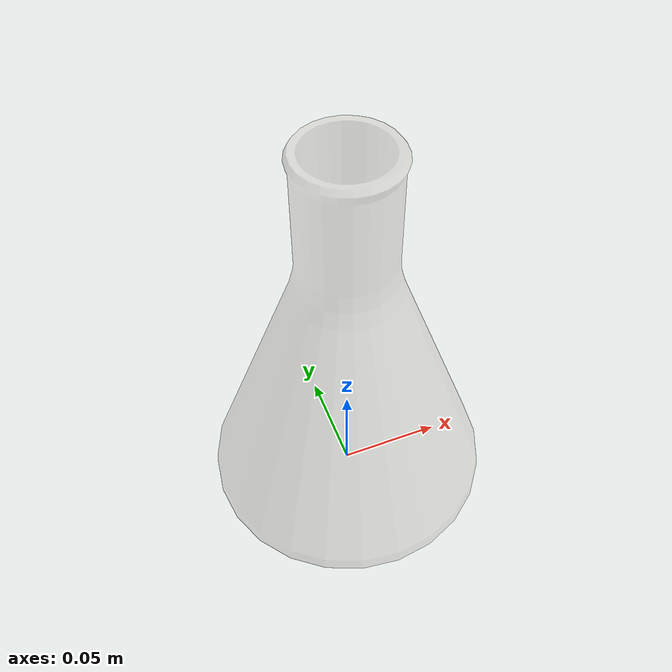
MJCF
<?xml version="1.0" ?>
<mujoco model="flask">
  <asset>
    <texture type="2d" name="lab_erlenmeyer_a" file="lab_erlenmeyer_a.png"/>
    <material name="lab_erlenmeyer_a" texture="lab_erlenmeyer_a" specular="0.4000000000000001" shininess="0.001" rgba="1 1 1 0.3"/>
    <mesh file="flask.obj" scale="0.013126563322826317 0.013126563322826317 0.013126563322826317"/>
      <material name="CaSO4" rgba="1 1 1 0.7"/>
    <material name="CuCl2" rgba="0.141 1.0 0.174 0.4"/>
    <material name="CuSO4" rgba="0 0.45 1 0.4"/>
    <material name="FeCl3" rgba="0.6475 0.5686 0.023 0.4"/>
    <material name="KMnO4" rgba="0.5 0 0.5 0.4"/>
    <material name="I2" rgba="0.3 0.13 0.0 0.4"/>
    <material name="K2CrO4" rgba="0.57 0.12 0.013 0.4"/>
    <material name="NaCl" rgba="1 1 1 0.3"/>
</asset>
  <worldbody>
    <body name="flask">
      <inertial pos="0 0 0.100000" mass="0.02" diaginertia="0.0008 0.0008 0.0005"/>
      <geom material="lab_erlenmeyer_a" mesh="flask" class="visual"/>
      <geom type="mesh" mesh="flask" class="collision"/>
      <site class="grasppoint" pos="0.0000 0.0000 0.1700"/>
      <!-- Anti-slip box: width=0.013m, height=0.04m, top at flask mouth (z=0.2).
           contype=2 conaffinity=2: ONLY collide with finger pads (pad contype=2, conaffinity=3). -->
          <geom name="solution" type="cylinder" size="0.0569 0.0130" pos="0 0 0.0180" material="CaSO4" class="visual"/>
      <site name="top_site" pos="0 0 0.2000" size="0.01" rgba="1 0 0 0"/>
      <site name="bottom_site" pos="0 0 0.000000" size="0.01" rgba="0 1 0 0"/>
</body>
  </worldbody>
  <compiler boundmass="0.015" boundinertia="1e-05" angle="radian"/>
  <default>
    <default class="visual">
      <geom group="2" type="mesh" contype="0" conaffinity="0" density="50"/>
    </default>
    <default class="collision">
      <geom group="3" type="mesh" density="50" friction="1 1 0.001" solimp="0.998 0.998 0.001" solref="0.001 2"/>
    </default>
    <default class="grasppoint">
      <site type="sphere" size="0.005" group="4" rgba="0 0 1 1"/>
    </default>
  </default>
</mujoco>
